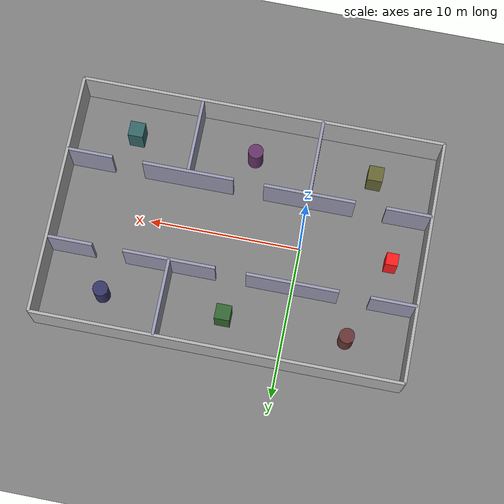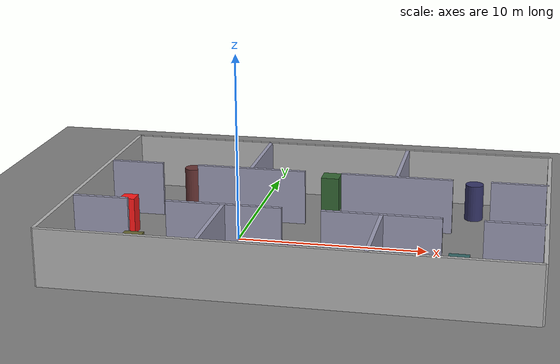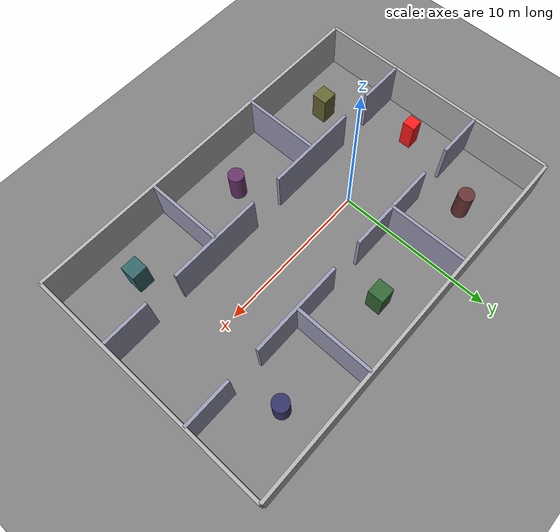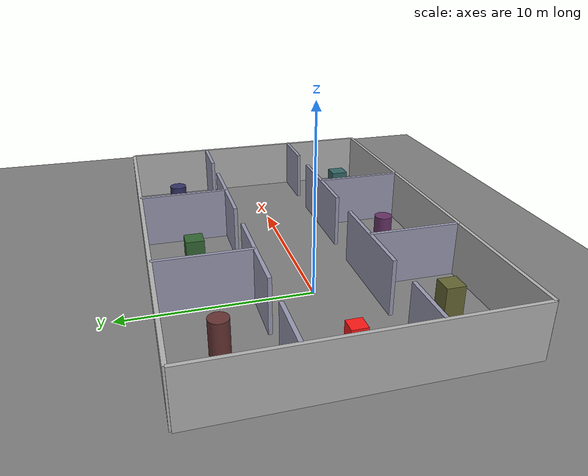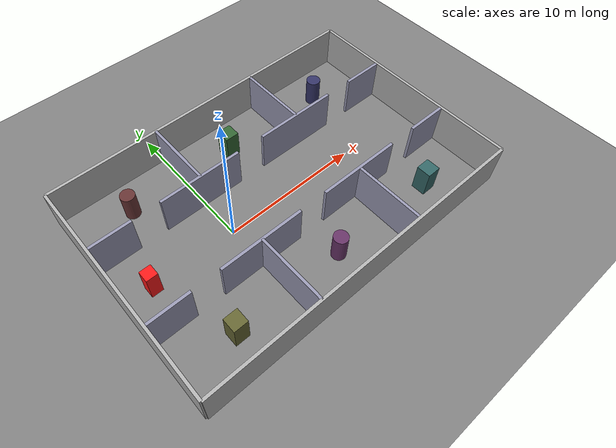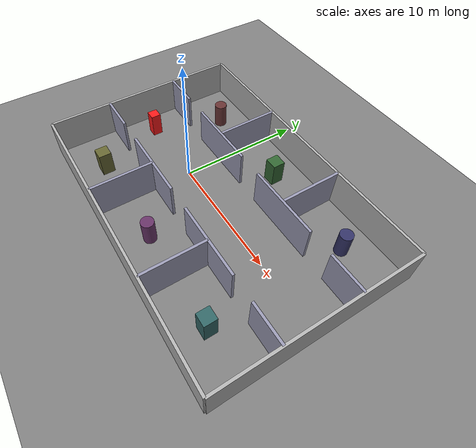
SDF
<?xml version="1.0" ?>
<sdf version="1.10">
  <world name="multi_room_obstacles">

    <physics name="fast" type="ignored">
      <max_step_size>0.02</max_step_size>
      <real_time_factor>0</real_time_factor>
    </physics>

    <plugin filename="gz-sim-physics-system"
            name="gz::sim::systems::Physics"/>
    <plugin filename="gz-sim-user-commands-system"
            name="gz::sim::systems::UserCommands"/>
    <plugin filename="gz-sim-scene-broadcaster-system"
            name="gz::sim::systems::SceneBroadcaster"/>
    <plugin filename="gz-sim-sensors-system"
            name="gz::sim::systems::Sensors">
      <render_engine>ogre2</render_engine>
    </plugin>
    <plugin filename="gz-sim-imu-system"
            name="gz::sim::systems::Imu"/>
    <plugin filename="gz-sim-contact-system"
            name="gz::sim::systems::Contact"/>

    <gravity>0 0 -9.81</gravity>

    <light type="directional" name="sun">
      <cast_shadows>true</cast_shadows>
      <pose>0 0 12 0 0 0</pose>
      <diffuse>0.9 0.9 0.9 1</diffuse>
      <specular>0.2 0.2 0.2 1</specular>
      <direction>-0.5 0.1 -0.9</direction>
    </light>

    <model name="ground_plane">
      <static>true</static>
      <link name="link">
        <collision name="collision">
          <geometry><plane><normal>0 0 1</normal><size>40 40</size></plane></geometry>
        </collision>
        <visual name="visual">
          <geometry><plane><normal>0 0 1</normal><size>40 40</size></plane></geometry>
          <material><ambient>0.4 0.4 0.4 1</ambient><diffuse>0.5 0.5 0.5 1</diffuse></material>
        </visual>
      </link>
    </model>

    <!-- 6-room building with a central corridor. Total area: 24x16 m   -->
    <!-- (x: -8 to 16, y: -8 to 8). Corridor: y in [-2, 2]              -->
    <model name="building">
      <static>true</static>

      <!-- ===== Outer walls ===== -->
      <link name="wall_n">
        <pose>4 8 1.5 0 0 0</pose>
        <collision name="c"><geometry><box><size>24 0.2 3</size></box></geometry></collision>
        <visual name="v"><geometry><box><size>24 0.2 3</size></box></geometry>
          <material><ambient>0.7 0.7 0.7 1</ambient><diffuse>0.7 0.7 0.7 1</diffuse></material></visual>
      </link>
      <link name="wall_s">
        <pose>4 -8 1.5 0 0 0</pose>
        <collision name="c"><geometry><box><size>24 0.2 3</size></box></geometry></collision>
        <visual name="v"><geometry><box><size>24 0.2 3</size></box></geometry>
          <material><ambient>0.7 0.7 0.7 1</ambient><diffuse>0.7 0.7 0.7 1</diffuse></material></visual>
      </link>
      <link name="wall_w">
        <pose>-8 0 1.5 0 0 0</pose>
        <collision name="c"><geometry><box><size>0.2 16 3</size></box></geometry></collision>
        <visual name="v"><geometry><box><size>0.2 16 3</size></box></geometry>
          <material><ambient>0.7 0.7 0.7 1</ambient><diffuse>0.7 0.7 0.7 1</diffuse></material></visual>
      </link>
      <link name="wall_e">
        <pose>16 0 1.5 0 0 0</pose>
        <collision name="c"><geometry><box><size>0.2 16 3</size></box></geometry></collision>
        <visual name="v"><geometry><box><size>0.2 16 3</size></box></geometry>
          <material><ambient>0.7 0.7 0.7 1</ambient><diffuse>0.7 0.7 0.7 1</diffuse></material></visual>
      </link>

      <!-- ===== Roof (Removed for better visibility) ===== -->

      <!-- ===== Inner horizontal walls (y=3) - Top of Corridor ===== -->
      <link name="wall_h_top_1">
        <pose>-6.5 3 1.5 0 0 0</pose>
        <collision name="c"><geometry><box><size>3 0.2 3</size></box></geometry></collision>
        <visual name="v"><geometry><box><size>3 0.2 3</size></box></geometry>
          <material><ambient>0.6 0.6 0.7 1</ambient></material></visual>
      </link>
      <link name="wall_h_top_2">
        <pose>0 3 1.5 0 0 0</pose>
        <collision name="c"><geometry><box><size>6 0.2 3</size></box></geometry></collision>
        <visual name="v"><geometry><box><size>6 0.2 3</size></box></geometry>
          <material><ambient>0.6 0.6 0.7 1</ambient></material></visual>
      </link>
      <link name="wall_h_top_3">
        <pose>8 3 1.5 0 0 0</pose>
        <collision name="c"><geometry><box><size>6 0.2 3</size></box></geometry></collision>
        <visual name="v"><geometry><box><size>6 0.2 3</size></box></geometry>
          <material><ambient>0.6 0.6 0.7 1</ambient></material></visual>
      </link>
      <link name="wall_h_top_4">
        <pose>14.5 3 1.5 0 0 0</pose>
        <collision name="c"><geometry><box><size>3 0.2 3</size></box></geometry></collision>
        <visual name="v"><geometry><box><size>3 0.2 3</size></box></geometry>
          <material><ambient>0.6 0.6 0.7 1</ambient></material></visual>
      </link>

      <!-- ===== Inner horizontal walls (y=-3) - Bottom of Corridor ===== -->
      <link name="wall_h_bot_1">
        <pose>-6.5 -3 1.5 0 0 0</pose>
        <collision name="c"><geometry><box><size>3 0.2 3</size></box></geometry></collision>
        <visual name="v"><geometry><box><size>3 0.2 3</size></box></geometry>
          <material><ambient>0.6 0.6 0.7 1</ambient></material></visual>
      </link>
      <link name="wall_h_bot_2">
        <pose>0 -3 1.5 0 0 0</pose>
        <collision name="c"><geometry><box><size>6 0.2 3</size></box></geometry></collision>
        <visual name="v"><geometry><box><size>6 0.2 3</size></box></geometry>
          <material><ambient>0.6 0.6 0.7 1</ambient></material></visual>
      </link>
      <link name="wall_h_bot_3">
        <pose>8 -3 1.5 0 0 0</pose>
        <collision name="c"><geometry><box><size>6 0.2 3</size></box></geometry></collision>
        <visual name="v"><geometry><box><size>6 0.2 3</size></box></geometry>
          <material><ambient>0.6 0.6 0.7 1</ambient></material></visual>
      </link>
      <link name="wall_h_bot_4">
        <pose>14.5 -3 1.5 0 0 0</pose>
        <collision name="c"><geometry><box><size>3 0.2 3</size></box></geometry></collision>
        <visual name="v"><geometry><box><size>3 0.2 3</size></box></geometry>
          <material><ambient>0.6 0.6 0.7 1</ambient></material></visual>
      </link>

      <!-- ===== Inner vertical walls separating rooms (Top: y in 3 to 8) ===== -->
      <link name="wall_v_top_1">
        <pose>0 5.5 1.5 0 0 0</pose>
        <collision name="c"><geometry><box><size>0.2 5 3</size></box></geometry></collision>
        <visual name="v"><geometry><box><size>0.2 5 3</size></box></geometry>
          <material><ambient>0.6 0.6 0.7 1</ambient></material></visual>
      </link>
      <link name="wall_v_top_2">
        <pose>8 5.5 1.5 0 0 0</pose>
        <collision name="c"><geometry><box><size>0.2 5 3</size></box></geometry></collision>
        <visual name="v"><geometry><box><size>0.2 5 3</size></box></geometry>
          <material><ambient>0.6 0.6 0.7 1</ambient></material></visual>
      </link>

      <!-- ===== Inner vertical walls separating rooms (Bottom: y in -8 to -3) ===== -->
      <link name="wall_v_bot_1">
        <pose>0 -5.5 1.5 0 0 0</pose>
        <collision name="c"><geometry><box><size>0.2 5 3</size></box></geometry></collision>
        <visual name="v"><geometry><box><size>0.2 5 3</size></box></geometry>
          <material><ambient>0.6 0.6 0.7 1</ambient></material></visual>
      </link>
      <link name="wall_v_bot_2">
        <pose>8 -5.5 1.5 0 0 0</pose>
        <collision name="c"><geometry><box><size>0.2 5 3</size></box></geometry></collision>
        <visual name="v"><geometry><box><size>0.2 5 3</size></box></geometry>
          <material><ambient>0.6 0.6 0.7 1</ambient></material></visual>
      </link>
    </model>

    <!-- ====== 6 Static Obstacles (1 per room) ====== -->
    <model name="obs_static_1">
      <static>true</static>
      <pose>-4 5.5 1 0 0 0</pose>
      <link name="l">
        <collision name="c"><geometry><cylinder><radius>0.5</radius><length>2.0</length></cylinder></geometry></collision>
        <visual name="v"><geometry><cylinder><radius>0.5</radius><length>2.0</length></cylinder></geometry>
          <material><ambient>0.4 0.2 0.2 1</ambient></material></visual>
      </link>
    </model>
    <model name="obs_static_2">
      <static>true</static>
      <pose>4 5.5 1 0 0 0</pose>
      <link name="l">
        <collision name="c"><geometry><box><size>1 1 2</size></box></geometry></collision>
        <visual name="v"><geometry><box><size>1 1 2</size></box></geometry>
          <material><ambient>0.2 0.4 0.2 1</ambient></material></visual>
      </link>
    </model>
    <model name="obs_static_3">
      <static>true</static>
      <pose>12 5.5 1 0 0 0</pose>
      <link name="l">
        <collision name="c"><geometry><cylinder><radius>0.5</radius><length>2.0</length></cylinder></geometry></collision>
        <visual name="v"><geometry><cylinder><radius>0.5</radius><length>2.0</length></cylinder></geometry>
          <material><ambient>0.2 0.2 0.4 1</ambient></material></visual>
      </link>
    </model>
    <model name="obs_static_4">
      <static>true</static>
      <pose>-4 -5.5 1 0 0 0</pose>
      <link name="l">
        <collision name="c"><geometry><box><size>1 1 2</size></box></geometry></collision>
        <visual name="v"><geometry><box><size>1 1 2</size></box></geometry>
          <material><ambient>0.4 0.4 0.2 1</ambient></material></visual>
      </link>
    </model>
    <model name="obs_static_5">
      <static>true</static>
      <pose>4 -5.5 1 0 0 0</pose>
      <link name="l">
        <collision name="c"><geometry><cylinder><radius>0.5</radius><length>2.0</length></cylinder></geometry></collision>
        <visual name="v"><geometry><cylinder><radius>0.5</radius><length>2.0</length></cylinder></geometry>
          <material><ambient>0.4 0.2 0.4 1</ambient></material></visual>
      </link>
    </model>
    <model name="obs_static_6">
      <static>true</static>
      <pose>12 -5.5 1 0 0 0</pose>
      <link name="l">
        <collision name="c"><geometry><box><size>1 1 2</size></box></geometry></collision>
        <visual name="v"><geometry><box><size>1 1 2</size></box></geometry>
          <material><ambient>0.2 0.4 0.4 1</ambient></material></visual>
      </link>
    </model>

    <!-- ====== 1 Moving-ready Obstacle (Corridor) ====== -->
    <!-- Removed failing trajectory plugin, will be static until a ROS node is added -->
    <model name="obs_dynamic_1">
      <static>true</static>
      <pose>-6 0 1 0 0 0</pose>
      <link name="link">
        <collision name="c">
          <geometry><box><size>0.8 0.8 2.0</size></box></geometry>
        </collision>
        <visual name="v">
          <geometry><box><size>0.8 0.8 2.0</size></box></geometry>
          <material><ambient>0.8 0.1 0.1 1</ambient><diffuse>1.0 0.1 0.1 1</diffuse></material>
        </visual>
      </link>
    </model>

  </world>
</sdf>
